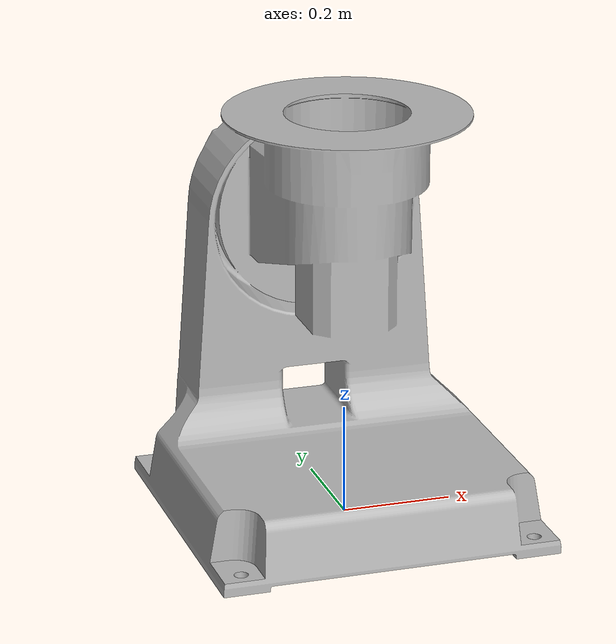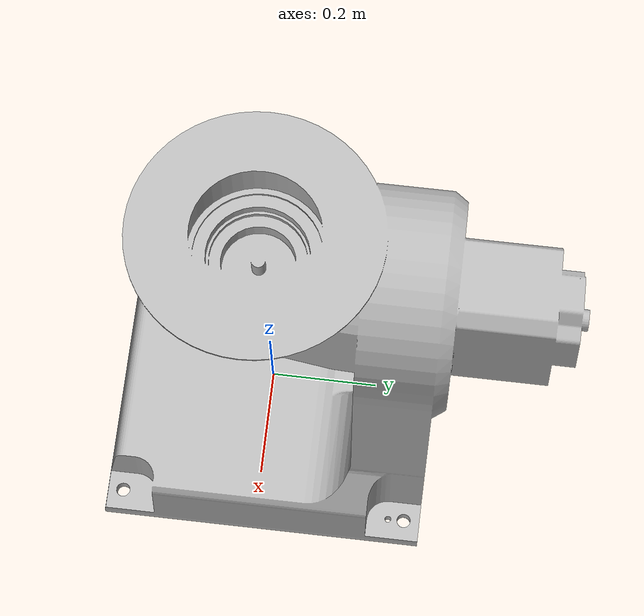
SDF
<?xml version="1.0" ?>

<sdf version="1.5">
  <model name="industrial_bench">
    <static>false</static>

    <link name="link0">
        <inertial>
          <inertia>
            <ixx>0.001</ixx>
            <ixy>0</ixy>
            <ixz>0</ixz>
            <iyy>0.001</iyy>
            <iyz>0</iyz>
            <izz>0.001</izz>
          </inertia>
          <mass>1.0</mass>
    	</inertial>
      <collision name="collision">
        <geometry>
       		<box>
            <size> 0.31 0.48 0.42</size>
          </box>
        </geometry>
      </collision>
      <visual name="visual">
        <geometry>
          <mesh>
            <uri>model://industrial_bench/meshes/industrial_bench.stl</uri>
          </mesh>
        </geometry>
      </visual>
	</link>
  </model>
</sdf>
